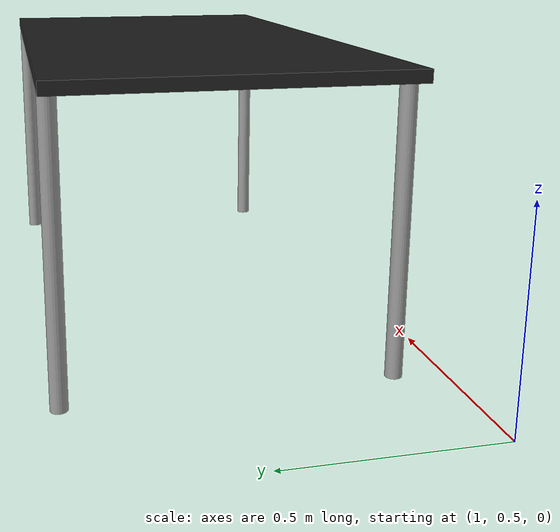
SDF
<sdf version="1.6">
 <world name="my_world">
  <model name="ground_plane">
   <link name="link">
    <collision name="collision">
     <surface><friction><ode><mu>0.1</mu><mu2>0.1</mu2></ode></friction></surface>
    </collision>
   </link>
  </model>
  <include><uri>model://sun</uri><pose>0 0 10 0 0 0</pose></include>
  <include><uri>model://my_table</uri><pose>2 1 0 0 0 0</pose></include>
  <physics type="ode">
   <max_step_size>0.001</max_step_size>
   <real_time_factor>1.0</real_time_factor>
   <real_time_update_rate>1000</real_time_update_rate>
  </physics>
 </world>
</sdf>

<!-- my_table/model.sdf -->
<sdf version="1.5">
  <model name="my_table">
    <static>true</static>
    <link name="my_table_link">
      <collision name="surface">
        <pose>0 0 0.7 0 0 0</pose>
        <geometry>
          <box>
            <size>1.5 0.8 0.03</size>
          </box>
        </geometry>
        <surface>
          <friction>
            <ode>
              <mu>0.6</mu>
              <mu2>0.6</mu2>
            </ode>
          </friction>
        </surface>
      </collision>
      <visual name="visual1">
        <pose>0 0 0.7 0 0 0</pose>
        <geometry>
          <box>
            <size>1.5 0.8 0.03</size>
          </box>
        </geometry>
        <material>
          <script>
            <uri>file://media/materials/scripts/gazebo.material</uri>
            <name>Gazebo/FlatBlack</name>
          </script>
        </material>
      </visual>
      <collision name="front_left_leg">
        <pose>0.68 0.38 0.35 0 0 0</pose>
        <geometry>
          <cylinder>
            <radius>0.02</radius>
            <length>0.7</length>
          </cylinder>
        </geometry>
      </collision>
      <visual name="front_left_leg">
        <pose>0.68 0.38 0.35 0 0 0</pose>
        <geometry>
          <cylinder>
            <radius>0.02</radius>
            <length>0.7</length>
          </cylinder>
        </geometry>
        <material>
          <script>
            <uri>file://media/materials/scripts/gazebo.material</uri>
            <name>Gazebo/Grey</name>
          </script>
        </material>
      </visual>
      <collision name="front_right_leg">
        <pose>0.68 -0.38 0.35 0 0 0</pose>
        <geometry>
          <cylinder>
            <radius>0.02</radius>
            <length>0.7</length>
          </cylinder>
        </geometry>
      </collision>
      <visual name="front_right_leg">
        <pose>0.68 -0.38 0.35 0 0 0</pose>
        <geometry>
          <cylinder>
            <radius>0.02</radius>
            <length>0.7</length>
          </cylinder>
        </geometry>
        <material>
          <script>
            <uri>file://media/materials/scripts/gazebo.material</uri>
            <name>Gazebo/Grey</name>
          </script>
        </material>
      </visual>
      <collision name="back_right_leg">
        <pose>-0.68 -0.38 0.35 0 0 0</pose>
        <geometry>
          <cylinder>
            <radius>0.02</radius>
            <length>0.7</length>
          </cylinder>
        </geometry>
      </collision>
      <visual name="back_right_leg">
        <pose>-0.68 -0.38 0.35 0 0 0</pose>
        <geometry>
          <cylinder>
            <radius>0.02</radius>
            <length>0.7</length>
          </cylinder>
        </geometry>
        <material>
          <script>
            <uri>file://media/materials/scripts/gazebo.material</uri>
            <name>Gazebo/Grey</name>
          </script>
        </material>
      </visual>
      <collision name="back_left_leg">
        <pose>-0.68 0.38 0.35 0 0 0</pose>
        <geometry>
          <cylinder>
            <radius>0.02</radius>
            <length>0.7</length>
          </cylinder>
        </geometry>
      </collision>
      <visual name="back_left_leg">
        <pose>-0.68 0.38 0.35 0 0 0</pose>
        <geometry>
          <cylinder>
            <radius>0.02</radius>
            <length>0.7</length>
          </cylinder>
        </geometry>
        <material>
          <script>
            <uri>file://media/materials/scripts/gazebo.material</uri>
            <name>Gazebo/Grey</name>
          </script>
        </material>
      </visual>
    </link>
  </model>
</sdf>
